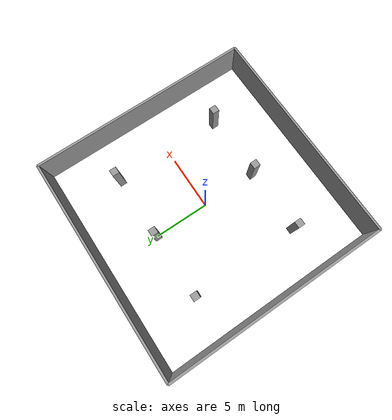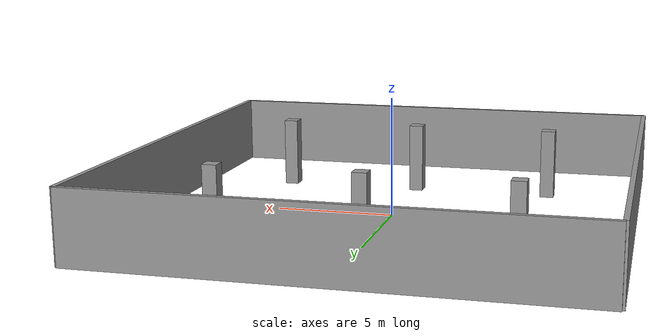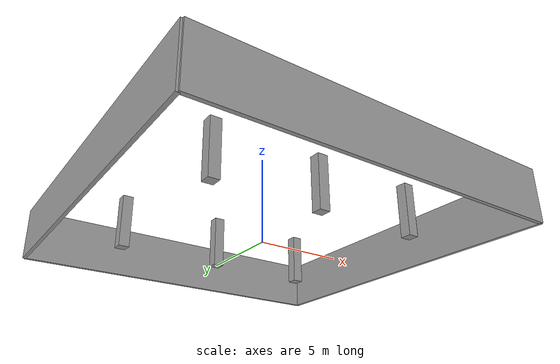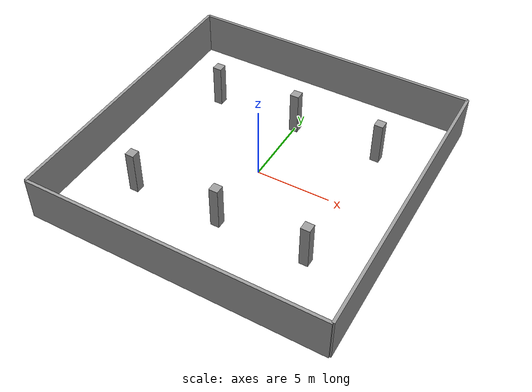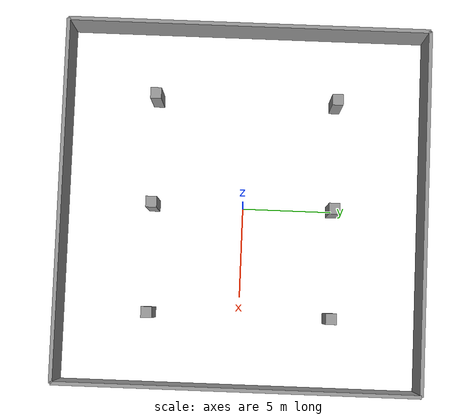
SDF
<?xml version='1.0'?>
<sdf version='1.6'>
  <model name='wall-room'>
    <static>true</static>
    <link name='wall_0'>
      <inertial>
        <mass>120</mass>
        <inertia>
          <ixx>90.4</ixx>
          <ixy>0</ixy>
          <ixz>0</ixz>
          <iyy>4090</iyy>
          <iyz>0</iyz>
          <izz>4000.4</izz>
        </inertia>
        <pose frame=''>0 0 0 0 -0 0</pose>
      </inertial>
      <pose frame=''>0 -10 1.5 0 -0 0</pose>
      <gravity>1</gravity>
      <self_collide>0</self_collide>
      <kinematic>0</kinematic>
      <enable_wind>0</enable_wind>
      <visual name='visual'>
        <pose frame=''>0 0 0 0 -0 0</pose>
        <geometry>
          <box>
            <size>20 0.2 3</size>
          </box>
        </geometry>
        <material>
          <lighting>1</lighting>
          <script>
            <uri>file://media/materials/scripts/gazebo.material</uri>
            <name>Gazebo/Grey</name>
          </script>
          <shader type='pixel'>
            <normal_map>__default__</normal_map>
          </shader>
          <ambient>0.3 0.3 0.3 1</ambient>
          <diffuse>0.7 0.7 0.7 1</diffuse>
          <specular>0.01 0.01 0.01 1</specular>
          <emissive>0 0 0 1</emissive>
        </material>
        <transparency>0</transparency>
        <cast_shadows>1</cast_shadows>
      </visual>
      <collision name='collision'>
        <laser_retro>0</laser_retro>
        <max_contacts>10</max_contacts>
        <pose frame=''>0 0 0 0 -0 0</pose>
        <geometry>
          <box>
            <size>20 0.2 3</size>
          </box>
        </geometry>
        <surface>
          <friction>
            <ode>
              <mu>1</mu>
              <mu2>1</mu2>
              <fdir1>0 0 0</fdir1>
              <slip1>0</slip1>
              <slip2>0</slip2>
            </ode>
            <torsional>
              <coefficient>1</coefficient>
              <patch_radius>0</patch_radius>
              <surface_radius>0</surface_radius>
              <use_patch_radius>1</use_patch_radius>
              <ode>
                <slip>0</slip>
              </ode>
            </torsional>
          </friction>
          <bounce>
            <restitution_coefficient>0</restitution_coefficient>
            <threshold>1e+06</threshold>
          </bounce>
          <contact>
            <collide_without_contact>0</collide_without_contact>
            <collide_without_contact_bitmask>1</collide_without_contact_bitmask>
            <collide_bitmask>1</collide_bitmask>
            <ode>
              <soft_cfm>0</soft_cfm>
              <soft_erp>0.2</soft_erp>
              <kp>1e+13</kp>
              <kd>1</kd>
              <max_vel>0.01</max_vel>
              <min_depth>0</min_depth>
            </ode>
            <bullet>
              <split_impulse>1</split_impulse>
              <split_impulse_penetration_threshold>-0.01</split_impulse_penetration_threshold>
              <soft_cfm>0</soft_cfm>
              <soft_erp>0.2</soft_erp>
              <kp>1e+13</kp>
              <kd>1</kd>
            </bullet>
          </contact>
        </surface>
      </collision>
    </link>
    <link name='wall_1'>
      <inertial>
        <mass>120</mass>
        <inertia>
          <ixx>90.4</ixx>
          <ixy>0</ixy>
          <ixz>0</ixz>
          <iyy>4090</iyy>
          <iyz>0</iyz>
          <izz>4000.4</izz>
        </inertia>
        <pose frame=''>0 0 0 0 -0 0</pose>
      </inertial>
      <pose frame=''>0 10 1.5 0 -0 0</pose>
      <gravity>1</gravity>
      <self_collide>0</self_collide>
      <kinematic>0</kinematic>
      <enable_wind>0</enable_wind>
      <visual name='visual'>
        <pose frame=''>0 0 0 0 -0 0</pose>
        <geometry>
          <box>
            <size>20 0.2 3</size>
          </box>
        </geometry>
        <material>
          <lighting>1</lighting>
          <script>
            <uri>file://media/materials/scripts/gazebo.material</uri>
            <name>Gazebo/Grey</name>
          </script>
          <shader type='pixel'>
            <normal_map>__default__</normal_map>
          </shader>
          <ambient>0.3 0.3 0.3 1</ambient>
          <diffuse>0.7 0.7 0.7 1</diffuse>
          <specular>0.01 0.01 0.01 1</specular>
          <emissive>0 0 0 1</emissive>
        </material>
        <transparency>0</transparency>
        <cast_shadows>1</cast_shadows>
      </visual>
      <collision name='collision'>
        <laser_retro>0</laser_retro>
        <max_contacts>10</max_contacts>
        <pose frame=''>0 0 0 0 -0 0</pose>
        <geometry>
          <box>
            <size>20 0.2 3</size>
          </box>
        </geometry>
        <surface>
          <friction>
            <ode>
              <mu>1</mu>
              <mu2>1</mu2>
              <fdir1>0 0 0</fdir1>
              <slip1>0</slip1>
              <slip2>0</slip2>
            </ode>
            <torsional>
              <coefficient>1</coefficient>
              <patch_radius>0</patch_radius>
              <surface_radius>0</surface_radius>
              <use_patch_radius>1</use_patch_radius>
              <ode>
                <slip>0</slip>
              </ode>
            </torsional>
          </friction>
          <bounce>
            <restitution_coefficient>0</restitution_coefficient>
            <threshold>1e+06</threshold>
          </bounce>
          <contact>
            <collide_without_contact>0</collide_without_contact>
            <collide_without_contact_bitmask>1</collide_without_contact_bitmask>
            <collide_bitmask>1</collide_bitmask>
            <ode>
              <soft_cfm>0</soft_cfm>
              <soft_erp>0.2</soft_erp>
              <kp>1e+13</kp>
              <kd>1</kd>
              <max_vel>0.01</max_vel>
              <min_depth>0</min_depth>
            </ode>
            <bullet>
              <split_impulse>1</split_impulse>
              <split_impulse_penetration_threshold>-0.01</split_impulse_penetration_threshold>
              <soft_cfm>0</soft_cfm>
              <soft_erp>0.2</soft_erp>
              <kp>1e+13</kp>
              <kd>1</kd>
            </bullet>
          </contact>
        </surface>
      </collision>
    </link>
    <link name='wall_2'>
      <inertial>
        <mass>120</mass>
        <inertia>
          <ixx>90.4</ixx>
          <ixy>0</ixy>
          <ixz>0</ixz>
          <iyy>4090</iyy>
          <iyz>0</iyz>
          <izz>4000.4</izz>
        </inertia>
        <pose frame=''>0 0 0 0 -0 0</pose>
      </inertial>
      <pose frame=''>-10 0 1.5 0 -0 1.5708</pose>
      <gravity>1</gravity>
      <self_collide>0</self_collide>
      <kinematic>0</kinematic>
      <enable_wind>0</enable_wind>
      <visual name='visual'>
        <pose frame=''>0 0 0 0 -0 0</pose>
        <geometry>
          <box>
            <size>20 0.2 3</size>
          </box>
        </geometry>
        <material>
          <lighting>1</lighting>
          <script>
            <uri>file://media/materials/scripts/gazebo.material</uri>
            <name>Gazebo/Grey</name>
          </script>
          <shader type='pixel'>
            <normal_map>__default__</normal_map>
          </shader>
          <ambient>0.3 0.3 0.3 1</ambient>
          <diffuse>0.7 0.7 0.7 1</diffuse>
          <specular>0.01 0.01 0.01 1</specular>
          <emissive>0 0 0 1</emissive>
        </material>
        <transparency>0</transparency>
        <cast_shadows>1</cast_shadows>
      </visual>
      <collision name='collision'>
        <laser_retro>0</laser_retro>
        <max_contacts>10</max_contacts>
        <pose frame=''>0 0 0 0 -0 0</pose>
        <geometry>
          <box>
            <size>20 0.2 3</size>
          </box>
        </geometry>
        <surface>
          <friction>
            <ode>
              <mu>1</mu>
              <mu2>1</mu2>
              <fdir1>0 0 0</fdir1>
              <slip1>0</slip1>
              <slip2>0</slip2>
            </ode>
            <torsional>
              <coefficient>1</coefficient>
              <patch_radius>0</patch_radius>
              <surface_radius>0</surface_radius>
              <use_patch_radius>1</use_patch_radius>
              <ode>
                <slip>0</slip>
              </ode>
            </torsional>
          </friction>
          <bounce>
            <restitution_coefficient>0</restitution_coefficient>
            <threshold>1e+06</threshold>
          </bounce>
          <contact>
            <collide_without_contact>0</collide_without_contact>
            <collide_without_contact_bitmask>1</collide_without_contact_bitmask>
            <collide_bitmask>1</collide_bitmask>
            <ode>
              <soft_cfm>0</soft_cfm>
              <soft_erp>0.2</soft_erp>
              <kp>1e+13</kp>
              <kd>1</kd>
              <max_vel>0.01</max_vel>
              <min_depth>0</min_depth>
            </ode>
            <bullet>
              <split_impulse>1</split_impulse>
              <split_impulse_penetration_threshold>-0.01</split_impulse_penetration_threshold>
              <soft_cfm>0</soft_cfm>
              <soft_erp>0.2</soft_erp>
              <kp>1e+13</kp>
              <kd>1</kd>
            </bullet>
          </contact>
        </surface>
      </collision>
    </link>
    <link name='wall_3'>
      <inertial>
        <mass>120</mass>
        <inertia>
          <ixx>90.4</ixx>
          <ixy>0</ixy>
          <ixz>0</ixz>
          <iyy>4090</iyy>
          <iyz>0</iyz>
          <izz>4000.4</izz>
        </inertia>
        <pose frame=''>0 0 0 0 -0 0</pose>
      </inertial>
      <pose frame=''>10 0 1.5 0 -0 1.5708</pose>
      <gravity>1</gravity>
      <self_collide>0</self_collide>
      <kinematic>0</kinematic>
      <enable_wind>0</enable_wind>
      <visual name='visual'>
        <pose frame=''>0 0 0 0 -0 0</pose>
        <geometry>
          <box>
            <size>20 0.2 3</size>
          </box>
        </geometry>
        <material>
          <lighting>1</lighting>
          <script>
            <uri>file://media/materials/scripts/gazebo.material</uri>
            <name>Gazebo/Grey</name>
          </script>
          <shader type='pixel'>
            <normal_map>__default__</normal_map>
          </shader>
          <ambient>0.3 0.3 0.3 1</ambient>
          <diffuse>0.7 0.7 0.7 1</diffuse>
          <specular>0.01 0.01 0.01 1</specular>
          <emissive>0 0 0 1</emissive>
        </material>
        <transparency>0</transparency>
        <cast_shadows>1</cast_shadows>
      </visual>
      <collision name='collision'>
        <laser_retro>0</laser_retro>
        <max_contacts>10</max_contacts>
        <pose frame=''>0 0 0 0 -0 0</pose>
        <geometry>
          <box>
            <size>20 0.2 3</size>
          </box>
        </geometry>
        <surface>
          <friction>
            <ode>
              <mu>1</mu>
              <mu2>1</mu2>
              <fdir1>0 0 0</fdir1>
              <slip1>0</slip1>
              <slip2>0</slip2>
            </ode>
            <torsional>
              <coefficient>1</coefficient>
              <patch_radius>0</patch_radius>
              <surface_radius>0</surface_radius>
              <use_patch_radius>1</use_patch_radius>
              <ode>
                <slip>0</slip>
              </ode>
            </torsional>
          </friction>
          <bounce>
            <restitution_coefficient>0</restitution_coefficient>
            <threshold>1e+06</threshold>
          </bounce>
          <contact>
            <collide_without_contact>0</collide_without_contact>
            <collide_without_contact_bitmask>1</collide_without_contact_bitmask>
            <collide_bitmask>1</collide_bitmask>
            <ode>
              <soft_cfm>0</soft_cfm>
              <soft_erp>0.2</soft_erp>
              <kp>1e+13</kp>
              <kd>1</kd>
              <max_vel>0.01</max_vel>
              <min_depth>0</min_depth>
            </ode>
            <bullet>
              <split_impulse>1</split_impulse>
              <split_impulse_penetration_threshold>-0.01</split_impulse_penetration_threshold>
              <soft_cfm>0</soft_cfm>
              <soft_erp>0.2</soft_erp>
              <kp>1e+13</kp>
              <kd>1</kd>
            </bullet>
          </contact>
        </surface>
      </collision>
    </link>
    <link name='pillar_0'>
      <inertial>
        <mass>1</mass>
        <inertia>
          <ixx>0.166667</ixx>
          <ixy>0</ixy>
          <ixz>0</ixz>
          <iyy>0.166667</iyy>
          <iyz>0</iyz>
          <izz>0.166667</izz>
        </inertia>
        <pose frame=''>0 0 0 0 -0 0</pose>
      </inertial>
      <pose frame=''>0 5 1.5 0 -0 0</pose>
      <gravity>1</gravity>
      <self_collide>0</self_collide>
      <kinematic>0</kinematic>
      <enable_wind>0</enable_wind>
      <visual name='visual'>
        <pose frame=''>0 0 0 0 -0 0</pose>
        <geometry>
          <box>
            <size>0.6 0.6 3</size>
          </box>
        </geometry>
        <material>
          <lighting>1</lighting>
          <script>
            <uri>file://media/materials/scripts/gazebo.material</uri>
            <name>Gazebo/Grey</name>
          </script>
          <shader type='pixel'>
            <normal_map>__default__</normal_map>
          </shader>
          <ambient>0.3 0.3 0.3 1</ambient>
          <diffuse>0.7 0.7 0.7 1</diffuse>
          <specular>0.01 0.01 0.01 1</specular>
          <emissive>0 0 0 1</emissive>
        </material>
        <transparency>0</transparency>
        <cast_shadows>1</cast_shadows>
      </visual>
      <collision name='collision'>
        <laser_retro>0</laser_retro>
        <max_contacts>10</max_contacts>
        <pose frame=''>0 0 0 0 -0 0</pose>
        <geometry>
          <box>
            <size>0.6 0.6 3</size>
          </box>
        </geometry>
        <surface>
          <friction>
            <ode>
              <mu>1</mu>
              <mu2>1</mu2>
              <fdir1>0 0 0</fdir1>
              <slip1>0</slip1>
              <slip2>0</slip2>
            </ode>
            <torsional>
              <coefficient>1</coefficient>
              <patch_radius>0</patch_radius>
              <surface_radius>0</surface_radius>
              <use_patch_radius>1</use_patch_radius>
              <ode>
                <slip>0</slip>
              </ode>
            </torsional>
          </friction>
          <bounce>
            <restitution_coefficient>0</restitution_coefficient>
            <threshold>1e+06</threshold>
          </bounce>
          <contact>
            <collide_without_contact>0</collide_without_contact>
            <collide_without_contact_bitmask>1</collide_without_contact_bitmask>
            <collide_bitmask>1</collide_bitmask>
            <ode>
              <soft_cfm>0</soft_cfm>
              <soft_erp>0.2</soft_erp>
              <kp>1e+13</kp>
              <kd>1</kd>
              <max_vel>0.01</max_vel>
              <min_depth>0</min_depth>
            </ode>
            <bullet>
              <split_impulse>1</split_impulse>
              <split_impulse_penetration_threshold>-0.01</split_impulse_penetration_threshold>
              <soft_cfm>0</soft_cfm>
              <soft_erp>0.2</soft_erp>
              <kp>1e+13</kp>
              <kd>1</kd>
            </bullet>
          </contact>
        </surface>
      </collision>
    </link>
    <link name='pillar_1'>
      <inertial>
        <mass>1</mass>
        <inertia>
          <ixx>0.166667</ixx>
          <ixy>0</ixy>
          <ixz>0</ixz>
          <iyy>0.166667</iyy>
          <iyz>0</iyz>
          <izz>0.166667</izz>
        </inertia>
        <pose frame=''>0 0 0 0 -0 0</pose>
      </inertial>
      <pose frame=''>0 -5 1.5 0 -0 0</pose>
      <gravity>1</gravity>
      <self_collide>0</self_collide>
      <kinematic>0</kinematic>
      <enable_wind>0</enable_wind>
      <visual name='visual'>
        <pose frame=''>0 0 0 0 -0 0</pose>
        <geometry>
          <box>
            <size>0.6 0.6 3</size>
          </box>
        </geometry>
        <material>
          <lighting>1</lighting>
          <script>
            <uri>file://media/materials/scripts/gazebo.material</uri>
            <name>Gazebo/Grey</name>
          </script>
          <shader type='pixel'>
            <normal_map>__default__</normal_map>
          </shader>
          <ambient>0.3 0.3 0.3 1</ambient>
          <diffuse>0.7 0.7 0.7 1</diffuse>
          <specular>0.01 0.01 0.01 1</specular>
          <emissive>0 0 0 1</emissive>
        </material>
        <transparency>0</transparency>
        <cast_shadows>1</cast_shadows>
      </visual>
      <collision name='collision'>
        <laser_retro>0</laser_retro>
        <max_contacts>10</max_contacts>
        <pose frame=''>0 0 0 0 -0 0</pose>
        <geometry>
          <box>
            <size>0.6 0.6 3</size>
          </box>
        </geometry>
        <surface>
          <friction>
            <ode>
              <mu>1</mu>
              <mu2>1</mu2>
              <fdir1>0 0 0</fdir1>
              <slip1>0</slip1>
              <slip2>0</slip2>
            </ode>
            <torsional>
              <coefficient>1</coefficient>
              <patch_radius>0</patch_radius>
              <surface_radius>0</surface_radius>
              <use_patch_radius>1</use_patch_radius>
              <ode>
                <slip>0</slip>
              </ode>
            </torsional>
          </friction>
          <bounce>
            <restitution_coefficient>0</restitution_coefficient>
            <threshold>1e+06</threshold>
          </bounce>
          <contact>
            <collide_without_contact>0</collide_without_contact>
            <collide_without_contact_bitmask>1</collide_without_contact_bitmask>
            <collide_bitmask>1</collide_bitmask>
            <ode>
              <soft_cfm>0</soft_cfm>
              <soft_erp>0.2</soft_erp>
              <kp>1e+13</kp>
              <kd>1</kd>
              <max_vel>0.01</max_vel>
              <min_depth>0</min_depth>
            </ode>
            <bullet>
              <split_impulse>1</split_impulse>
              <split_impulse_penetration_threshold>-0.01</split_impulse_penetration_threshold>
              <soft_cfm>0</soft_cfm>
              <soft_erp>0.2</soft_erp>
              <kp>1e+13</kp>
              <kd>1</kd>
            </bullet>
          </contact>
        </surface>
      </collision>
    </link>
    <link name='pillar_2'>
      <inertial>
        <mass>1</mass>
        <inertia>
          <ixx>0.166667</ixx>
          <ixy>0</ixy>
          <ixz>0</ixz>
          <iyy>0.166667</iyy>
          <iyz>0</iyz>
          <izz>0.166667</izz>
        </inertia>
        <pose frame=''>0 0 0 0 -0 0</pose>
      </inertial>
      <pose frame=''>-6 5 1.5 0 -0 0</pose>
      <gravity>1</gravity>
      <self_collide>0</self_collide>
      <kinematic>0</kinematic>
      <enable_wind>0</enable_wind>
      <visual name='visual'>
        <pose frame=''>0 0 0 0 -0 0</pose>
        <geometry>
          <box>
            <size>0.6 0.6 3</size>
          </box>
        </geometry>
        <material>
          <lighting>1</lighting>
          <script>
            <uri>file://media/materials/scripts/gazebo.material</uri>
            <name>Gazebo/Grey</name>
          </script>
          <shader type='pixel'>
            <normal_map>__default__</normal_map>
          </shader>
          <ambient>0.3 0.3 0.3 1</ambient>
          <diffuse>0.7 0.7 0.7 1</diffuse>
          <specular>0.01 0.01 0.01 1</specular>
          <emissive>0 0 0 1</emissive>
        </material>
        <transparency>0</transparency>
        <cast_shadows>1</cast_shadows>
      </visual>
      <collision name='collision'>
        <laser_retro>0</laser_retro>
        <max_contacts>10</max_contacts>
        <pose frame=''>0 0 0 0 -0 0</pose>
        <geometry>
          <box>
            <size>0.6 0.6 3</size>
          </box>
        </geometry>
        <surface>
          <friction>
            <ode>
              <mu>1</mu>
              <mu2>1</mu2>
              <fdir1>0 0 0</fdir1>
              <slip1>0</slip1>
              <slip2>0</slip2>
            </ode>
            <torsional>
              <coefficient>1</coefficient>
              <patch_radius>0</patch_radius>
              <surface_radius>0</surface_radius>
              <use_patch_radius>1</use_patch_radius>
              <ode>
                <slip>0</slip>
              </ode>
            </torsional>
          </friction>
          <bounce>
            <restitution_coefficient>0</restitution_coefficient>
            <threshold>1e+06</threshold>
          </bounce>
          <contact>
            <collide_without_contact>0</collide_without_contact>
            <collide_without_contact_bitmask>1</collide_without_contact_bitmask>
            <collide_bitmask>1</collide_bitmask>
            <ode>
              <soft_cfm>0</soft_cfm>
              <soft_erp>0.2</soft_erp>
              <kp>1e+13</kp>
              <kd>1</kd>
              <max_vel>0.01</max_vel>
              <min_depth>0</min_depth>
            </ode>
            <bullet>
              <split_impulse>1</split_impulse>
              <split_impulse_penetration_threshold>-0.01</split_impulse_penetration_threshold>
              <soft_cfm>0</soft_cfm>
              <soft_erp>0.2</soft_erp>
              <kp>1e+13</kp>
              <kd>1</kd>
            </bullet>
          </contact>
        </surface>
      </collision>
    </link>
    <link name='pillar_3'>
      <inertial>
        <mass>1</mass>
        <inertia>
          <ixx>0.166667</ixx>
          <ixy>0</ixy>
          <ixz>0</ixz>
          <iyy>0.166667</iyy>
          <iyz>0</iyz>
          <izz>0.166667</izz>
        </inertia>
        <pose frame=''>0 0 0 0 -0 0</pose>
      </inertial>
      <pose frame=''>-6 -5 1.5 0 -0 0</pose>
      <gravity>1</gravity>
      <self_collide>0</self_collide>
      <kinematic>0</kinematic>
      <enable_wind>0</enable_wind>
      <visual name='visual'>
        <pose frame=''>0 0 0 0 -0 0</pose>
        <geometry>
          <box>
            <size>0.6 0.6 3</size>
          </box>
        </geometry>
        <material>
          <lighting>1</lighting>
          <script>
            <uri>file://media/materials/scripts/gazebo.material</uri>
            <name>Gazebo/Grey</name>
          </script>
          <shader type='pixel'>
            <normal_map>__default__</normal_map>
          </shader>
          <ambient>0.3 0.3 0.3 1</ambient>
          <diffuse>0.7 0.7 0.7 1</diffuse>
          <specular>0.01 0.01 0.01 1</specular>
          <emissive>0 0 0 1</emissive>
        </material>
        <transparency>0</transparency>
        <cast_shadows>1</cast_shadows>
      </visual>
      <collision name='collision'>
        <laser_retro>0</laser_retro>
        <max_contacts>10</max_contacts>
        <pose frame=''>0 0 0 0 -0 0</pose>
        <geometry>
          <box>
            <size>0.6 0.6 3</size>
          </box>
        </geometry>
        <surface>
          <friction>
            <ode>
              <mu>1</mu>
              <mu2>1</mu2>
              <fdir1>0 0 0</fdir1>
              <slip1>0</slip1>
              <slip2>0</slip2>
            </ode>
            <torsional>
              <coefficient>1</coefficient>
              <patch_radius>0</patch_radius>
              <surface_radius>0</surface_radius>
              <use_patch_radius>1</use_patch_radius>
              <ode>
                <slip>0</slip>
              </ode>
            </torsional>
          </friction>
          <bounce>
            <restitution_coefficient>0</restitution_coefficient>
            <threshold>1e+06</threshold>
          </bounce>
          <contact>
            <collide_without_contact>0</collide_without_contact>
            <collide_without_contact_bitmask>1</collide_without_contact_bitmask>
            <collide_bitmask>1</collide_bitmask>
            <ode>
              <soft_cfm>0</soft_cfm>
              <soft_erp>0.2</soft_erp>
              <kp>1e+13</kp>
              <kd>1</kd>
              <max_vel>0.01</max_vel>
              <min_depth>0</min_depth>
            </ode>
            <bullet>
              <split_impulse>1</split_impulse>
              <split_impulse_penetration_threshold>-0.01</split_impulse_penetration_threshold>
              <soft_cfm>0</soft_cfm>
              <soft_erp>0.2</soft_erp>
              <kp>1e+13</kp>
              <kd>1</kd>
            </bullet>
          </contact>
        </surface>
      </collision>
    </link>
    <link name='pillar_4'>
      <inertial>
        <mass>1</mass>
        <inertia>
          <ixx>0.166667</ixx>
          <ixy>0</ixy>
          <ixz>0</ixz>
          <iyy>0.166667</iyy>
          <iyz>0</iyz>
          <izz>0.166667</izz>
        </inertia>
        <pose frame=''>0 0 0 0 -0 0</pose>
      </inertial>
      <pose frame=''>6 5 1.5 0 -0 0</pose>
      <gravity>1</gravity>
      <self_collide>0</self_collide>
      <kinematic>0</kinematic>
      <enable_wind>0</enable_wind>
      <visual name='visual'>
        <pose frame=''>0 0 0 0 -0 0</pose>
        <geometry>
          <box>
            <size>0.6 0.6 3</size>
          </box>
        </geometry>
        <material>
          <lighting>1</lighting>
          <script>
            <uri>file://media/materials/scripts/gazebo.material</uri>
            <name>Gazebo/Grey</name>
          </script>
          <shader type='pixel'>
            <normal_map>__default__</normal_map>
          </shader>
          <ambient>0.3 0.3 0.3 1</ambient>
          <diffuse>0.7 0.7 0.7 1</diffuse>
          <specular>0.01 0.01 0.01 1</specular>
          <emissive>0 0 0 1</emissive>
        </material>
        <transparency>0</transparency>
        <cast_shadows>1</cast_shadows>
      </visual>
      <collision name='collision'>
        <laser_retro>0</laser_retro>
        <max_contacts>10</max_contacts>
        <pose frame=''>0 0 0 0 -0 0</pose>
        <geometry>
          <box>
            <size>0.6 0.6 3</size>
          </box>
        </geometry>
        <surface>
          <friction>
            <ode>
              <mu>1</mu>
              <mu2>1</mu2>
              <fdir1>0 0 0</fdir1>
              <slip1>0</slip1>
              <slip2>0</slip2>
            </ode>
            <torsional>
              <coefficient>1</coefficient>
              <patch_radius>0</patch_radius>
              <surface_radius>0</surface_radius>
              <use_patch_radius>1</use_patch_radius>
              <ode>
                <slip>0</slip>
              </ode>
            </torsional>
          </friction>
          <bounce>
            <restitution_coefficient>0</restitution_coefficient>
            <threshold>1e+06</threshold>
          </bounce>
          <contact>
            <collide_without_contact>0</collide_without_contact>
            <collide_without_contact_bitmask>1</collide_without_contact_bitmask>
            <collide_bitmask>1</collide_bitmask>
            <ode>
              <soft_cfm>0</soft_cfm>
              <soft_erp>0.2</soft_erp>
              <kp>1e+13</kp>
              <kd>1</kd>
              <max_vel>0.01</max_vel>
              <min_depth>0</min_depth>
            </ode>
            <bullet>
              <split_impulse>1</split_impulse>
              <split_impulse_penetration_threshold>-0.01</split_impulse_penetration_threshold>
              <soft_cfm>0</soft_cfm>
              <soft_erp>0.2</soft_erp>
              <kp>1e+13</kp>
              <kd>1</kd>
            </bullet>
          </contact>
        </surface>
      </collision>
    </link>
    <link name='pillar_5'>
      <inertial>
        <mass>1</mass>
        <inertia>
          <ixx>0.166667</ixx>
          <ixy>0</ixy>
          <ixz>0</ixz>
          <iyy>0.166667</iyy>
          <iyz>0</iyz>
          <izz>0.166667</izz>
        </inertia>
        <pose frame=''>0 0 0 0 -0 0</pose>
      </inertial>
      <pose frame=''>6 -5 1.5 0 -0 0</pose>
      <gravity>1</gravity>
      <self_collide>0</self_collide>
      <kinematic>0</kinematic>
      <enable_wind>0</enable_wind>
      <visual name='visual'>
        <pose frame=''>0 0 0 0 -0 0</pose>
        <geometry>
          <box>
            <size>0.6 0.6 3</size>
          </box>
        </geometry>
        <material>
          <lighting>1</lighting>
          <script>
            <uri>file://media/materials/scripts/gazebo.material</uri>
            <name>Gazebo/Grey</name>
          </script>
          <shader type='pixel'>
            <normal_map>__default__</normal_map>
          </shader>
          <ambient>0.3 0.3 0.3 1</ambient>
          <diffuse>0.7 0.7 0.7 1</diffuse>
          <specular>0.01 0.01 0.01 1</specular>
          <emissive>0 0 0 1</emissive>
        </material>
        <transparency>0</transparency>
        <cast_shadows>1</cast_shadows>
      </visual>
      <collision name='collision'>
        <laser_retro>0</laser_retro>
        <max_contacts>10</max_contacts>
        <pose frame=''>0 0 0 0 -0 0</pose>
        <geometry>
          <box>
            <size>0.6 0.6 3</size>
          </box>
        </geometry>
        <surface>
          <friction>
            <ode>
              <mu>1</mu>
              <mu2>1</mu2>
              <fdir1>0 0 0</fdir1>
              <slip1>0</slip1>
              <slip2>0</slip2>
            </ode>
            <torsional>
              <coefficient>1</coefficient>
              <patch_radius>0</patch_radius>
              <surface_radius>0</surface_radius>
              <use_patch_radius>1</use_patch_radius>
              <ode>
                <slip>0</slip>
              </ode>
            </torsional>
          </friction>
          <bounce>
            <restitution_coefficient>0</restitution_coefficient>
            <threshold>1e+06</threshold>
          </bounce>
          <contact>
            <collide_without_contact>0</collide_without_contact>
            <collide_without_contact_bitmask>1</collide_without_contact_bitmask>
            <collide_bitmask>1</collide_bitmask>
            <ode>
              <soft_cfm>0</soft_cfm>
              <soft_erp>0.2</soft_erp>
              <kp>1e+13</kp>
              <kd>1</kd>
              <max_vel>0.01</max_vel>
              <min_depth>0</min_depth>
            </ode>
            <bullet>
              <split_impulse>1</split_impulse>
              <split_impulse_penetration_threshold>-0.01</split_impulse_penetration_threshold>
              <soft_cfm>0</soft_cfm>
              <soft_erp>0.2</soft_erp>
              <kp>1e+13</kp>
              <kd>1</kd>
            </bullet>
          </contact>
        </surface>
      </collision>
    </link>
    <static>1</static>
    <allow_auto_disable>1</allow_auto_disable>
  </model>
</sdf>
